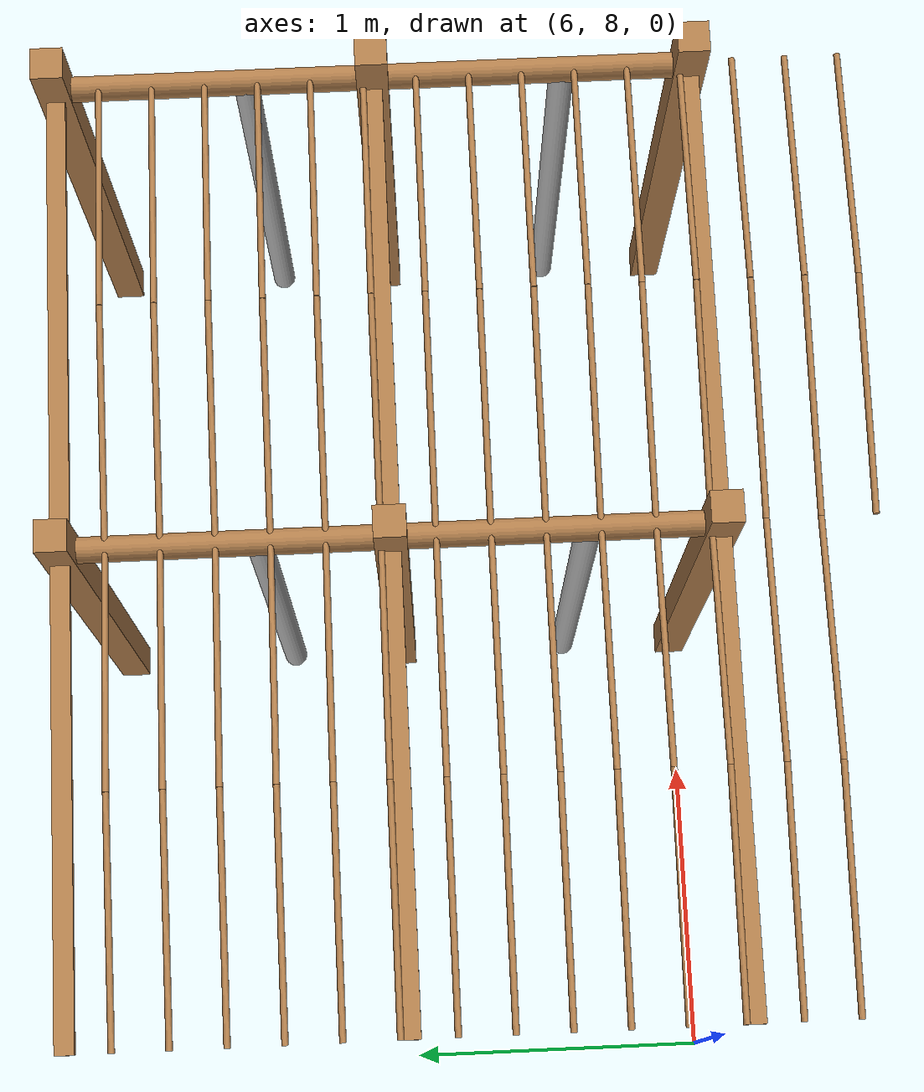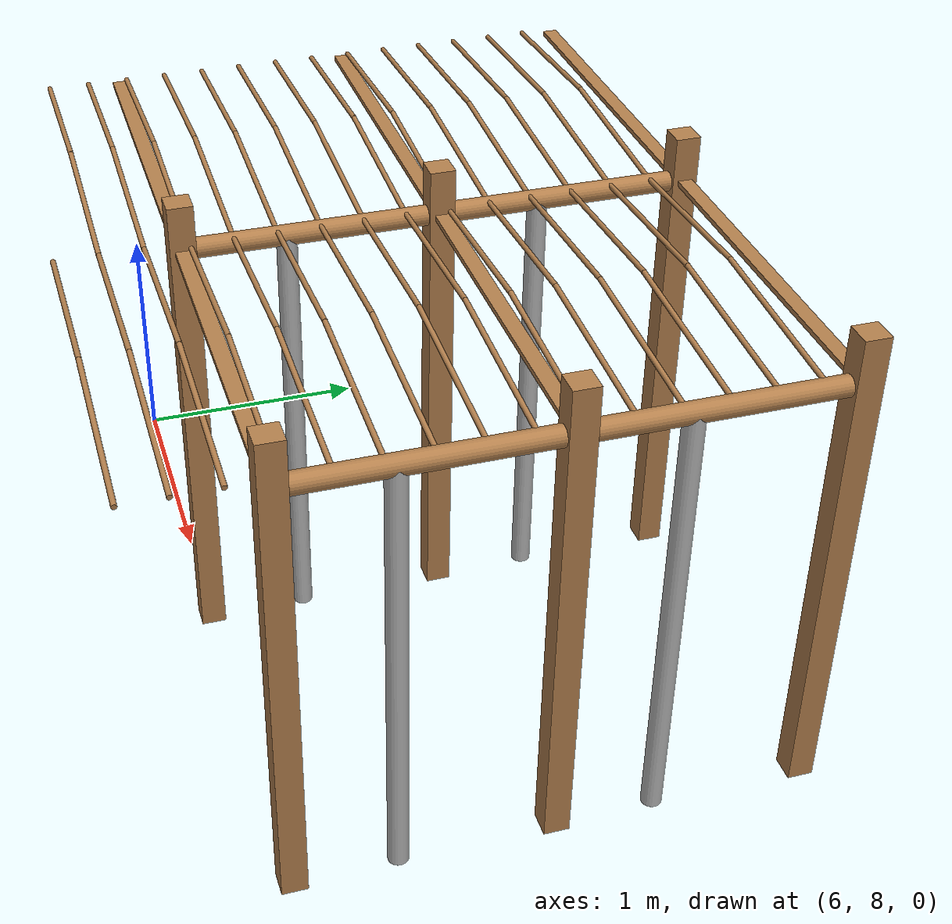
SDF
<sdf version="1.4">
 <model name="pergola">
  <include><name>post_63</name><pose>7.5 8.0 0 0 0 0</pose><uri>model://post</uri></include>
  <include><name>post_64</name><pose>7.5 9.0 0 0 0 0</pose><uri>model://post</uri></include>
  <include><name>post_65</name><pose>7.5 10.0 0 0 0 0</pose><uri>model://post</uri></include>
  <include><name>post_74</name><pose>9.0 8.0 0 0 0 0</pose><uri>model://post</uri></include>
  <include><name>post_75</name><pose>9.0 9.0 0 0 0 0</pose><uri>model://post</uri></include>
  <include><name>post_76</name><pose>9.0 10.0 0 0 0 0</pose><uri>model://post</uri></include>
  <link name="beam_52">
   <pose>6.75 8.0 1.81 0 0 0</pose>
   <collision name="collision"><geometry><box><size>1.5 0.06 0.02</size></box></geometry></collision>
   <visual name="visual">
    <geometry><box><size>1.5 0.06 0.02</size></box></geometry>
    <material><script><name>Gazebo/Wood</name></script></material>
   </visual>
   <inertial>
    <mass>5</mass>
    <inertia>
     <ixx>0.0016666666666666668</ixx>
     <ixy>0.0</ixy>
     <ixz>0.0</ixz>
     <iyy>0.9390000000000001</iyy>
     <iyz>0.0</iyz>
     <izz>0.9376666666666665</izz>
    </inertia>
   </inertial>
  </link>
  <link name="beam_53">
   <pose>6.75 9.0 1.81 0 0 0</pose>
   <collision name="collision"><geometry><box><size>1.5 0.06 0.02</size></box></geometry></collision>
   <visual name="visual">
    <geometry><box><size>1.5 0.06 0.02</size></box></geometry>
    <material><script><name>Gazebo/Wood</name></script></material>
   </visual>
   <inertial>
    <mass>5</mass>
    <inertia>
     <ixx>0.0016666666666666668</ixx>
     <ixy>0.0</ixy>
     <ixz>0.0</ixz>
     <iyy>0.9390000000000001</iyy>
     <iyz>0.0</iyz>
     <izz>0.9376666666666665</izz>
    </inertia>
   </inertial>
  </link>
  <link name="beam_54">
   <pose>6.75 10.0 1.81 0 0 0</pose>
   <collision name="collision"><geometry><box><size>1.5 0.06 0.02</size></box></geometry></collision>
   <visual name="visual">
    <geometry><box><size>1.5 0.06 0.02</size></box></geometry>
    <material><script><name>Gazebo/Wood</name></script></material>
   </visual>
   <inertial>
    <mass>5</mass>
    <inertia>
     <ixx>0.0016666666666666668</ixx>
     <ixy>0.0</ixy>
     <ixz>0.0</ixz>
     <iyy>0.9390000000000001</iyy>
     <iyz>0.0</iyz>
     <izz>0.9376666666666665</izz>
    </inertia>
   </inertial>
  </link>
  <link name="beam_63">
   <pose>8.25 8.0 1.81 0 0 0</pose>
   <collision name="collision"><geometry><box><size>1.5 0.06 0.02</size></box></geometry></collision>
   <visual name="visual">
    <geometry><box><size>1.5 0.06 0.02</size></box></geometry>
    <material><script><name>Gazebo/Wood</name></script></material>
   </visual>
   <inertial>
    <mass>5</mass>
    <inertia>
     <ixx>0.0016666666666666668</ixx>
     <ixy>0.0</ixy>
     <ixz>0.0</ixz>
     <iyy>0.9390000000000001</iyy>
     <iyz>0.0</iyz>
     <izz>0.9376666666666665</izz>
    </inertia>
   </inertial>
  </link>
  <link name="beam_64">
   <pose>8.25 9.0 1.81 0 0 0</pose>
   <collision name="collision"><geometry><box><size>1.5 0.06 0.02</size></box></geometry></collision>
   <visual name="visual">
    <geometry><box><size>1.5 0.06 0.02</size></box></geometry>
    <material><script><name>Gazebo/Wood</name></script></material>
   </visual>
   <inertial>
    <mass>5</mass>
    <inertia>
     <ixx>0.0016666666666666668</ixx>
     <ixy>0.0</ixy>
     <ixz>0.0</ixz>
     <iyy>0.9390000000000001</iyy>
     <iyz>0.0</iyz>
     <izz>0.9376666666666665</izz>
    </inertia>
   </inertial>
  </link>
  <link name="beam_65">
   <pose>8.25 10.0 1.81 0 0 0</pose>
   <collision name="collision"><geometry><box><size>1.5 0.06 0.02</size></box></geometry></collision>
   <visual name="visual">
    <geometry><box><size>1.5 0.06 0.02</size></box></geometry>
    <material><script><name>Gazebo/Wood</name></script></material>
   </visual>
   <inertial>
    <mass>5</mass>
    <inertia>
     <ixx>0.0016666666666666668</ixx>
     <ixy>0.0</ixy>
     <ixz>0.0</ixz>
     <iyy>0.9390000000000001</iyy>
     <iyz>0.0</iyz>
     <izz>0.9376666666666665</izz>
    </inertia>
   </inertial>
  </link>
  <include><name>tree_58</name><pose>7.5 8.4 0 0 0 0</pose><uri>model://tree_trunk</uri></include>
  <include><name>tree_59</name><pose>7.5 9.4 0 0 0 0</pose><uri>model://tree_trunk</uri></include>
  <include><name>tree_68</name><pose>9.0 8.4 0 0 0 0</pose><uri>model://tree_trunk</uri></include>
  <include><name>tree_69</name><pose>9.0 9.4 0 0 0 0</pose><uri>model://tree_trunk</uri></include>
  <link name="baseBranch_58">
   <pose>7.5 8.5 1.8 1.5707963267948966 0 0</pose>
   <collision name="collision">
    <geometry><cylinder><radius>0.04</radius><length>0.94</length></cylinder></geometry>
   </collision>
   <visual name="visual">
    <geometry><cylinder><radius>0.04</radius><length>0.94</length></cylinder></geometry>
    <material><script><name>Gazebo/WoodFloor</name></script></material>
   </visual>
   <inertial>
    <mass>10</mass>
    <inertia>
     <ixx>0.7403333333333334</ixx>
     <ixy>0.0</ixy>
     <ixz>0.0</ixz>
     <iyy>0.7403333333333334</iyy>
     <iyz>0.0</iyz>
     <izz>0.008</izz>
    </inertia>
   </inertial>
  </link>
  <link name="baseBranch_59">
   <pose>7.5 9.5 1.8 1.5707963267948966 0 0</pose>
   <collision name="collision">
    <geometry><cylinder><radius>0.04</radius><length>0.94</length></cylinder></geometry>
   </collision>
   <visual name="visual">
    <geometry><cylinder><radius>0.04</radius><length>0.94</length></cylinder></geometry>
    <material><script><name>Gazebo/WoodFloor</name></script></material>
   </visual>
   <inertial>
    <mass>10</mass>
    <inertia>
     <ixx>0.7403333333333334</ixx>
     <ixy>0.0</ixy>
     <ixz>0.0</ixz>
     <iyy>0.7403333333333334</iyy>
     <iyz>0.0</iyz>
     <izz>0.008</izz>
    </inertia>
   </inertial>
  </link>
  <link name="baseBranch_68">
   <pose>9.0 8.5 1.8 1.5707963267948966 0 0</pose>
   <collision name="collision">
    <geometry><cylinder><radius>0.04</radius><length>0.94</length></cylinder></geometry>
   </collision>
   <visual name="visual">
    <geometry><cylinder><radius>0.04</radius><length>0.94</length></cylinder></geometry>
    <material><script><name>Gazebo/WoodFloor</name></script></material>
   </visual>
   <inertial>
    <mass>10</mass>
    <inertia>
     <ixx>0.7403333333333334</ixx>
     <ixy>0.0</ixy>
     <ixz>0.0</ixz>
     <iyy>0.7403333333333334</iyy>
     <iyz>0.0</iyz>
     <izz>0.008</izz>
    </inertia>
   </inertial>
  </link>
  <link name="baseBranch_69">
   <pose>9.0 9.5 1.8 1.5707963267948966 0 0</pose>
   <collision name="collision">
    <geometry><cylinder><radius>0.04</radius><length>0.94</length></cylinder></geometry>
   </collision>
   <visual name="visual">
    <geometry><cylinder><radius>0.04</radius><length>0.94</length></cylinder></geometry>
    <material><script><name>Gazebo/WoodFloor</name></script></material>
   </visual>
   <inertial>
    <mass>10</mass>
    <inertia>
     <ixx>0.7403333333333334</ixx>
     <ixy>0.0</ixy>
     <ixz>0.0</ixz>
     <iyy>0.7403333333333334</iyy>
     <iyz>0.0</iyz>
     <izz>0.008</izz>
    </inertia>
   </inertial>
  </link>
  <link name="vine_572">
   <pose>6.375 7.696666666666666 1.85 0 1.5042281630190728 0</pose>
   <collision name="collision">
    <geometry><cylinder><radius>0.01</radius><length>0.7516648189186453</length></cylinder></geometry>
   </collision>
   <visual name="visual">
    <geometry><cylinder><radius>0.01</radius><length>0.7516648189186453</length></cylinder></geometry>
    <material><script><name>Gazebo/WoodFloor</name></script></material>
   </visual>
   <inertial>
    <mass>5</mass>
    <inertia>
     <ixx>0.23554166666666657</ixx>
     <ixy>0.0</ixy>
     <ixz>0.0</ixz>
     <iyy>0.23554166666666657</iyy>
     <iyz>0.0</iyz>
     <izz>0.00025</izz>
    </inertia>
   </inertial>
  </link>
  <link name="vine_573">
   <pose>7.125 7.696666666666666 1.85 0 -1.5042281630190728 0</pose>
   <collision name="collision">
    <geometry><cylinder><radius>0.01</radius><length>0.7516648189186453</length></cylinder></geometry>
   </collision>
   <visual name="visual">
    <geometry><cylinder><radius>0.01</radius><length>0.7516648189186453</length></cylinder></geometry>
    <material><script><name>Gazebo/WoodFloor</name></script></material>
   </visual>
   <inertial>
    <mass>5</mass>
    <inertia>
     <ixx>0.23554166666666657</ixx>
     <ixy>0.0</ixy>
     <ixz>0.0</ixz>
     <iyy>0.23554166666666657</iyy>
     <iyz>0.0</iyz>
     <izz>0.00025</izz>
    </inertia>
   </inertial>
  </link>
  <link name="vine_574">
   <pose>6.375 7.863333333333333 1.85 0 1.5042281630190728 0</pose>
   <collision name="collision">
    <geometry><cylinder><radius>0.01</radius><length>0.7516648189186453</length></cylinder></geometry>
   </collision>
   <visual name="visual">
    <geometry><cylinder><radius>0.01</radius><length>0.7516648189186453</length></cylinder></geometry>
    <material><script><name>Gazebo/WoodFloor</name></script></material>
   </visual>
   <inertial>
    <mass>5</mass>
    <inertia>
     <ixx>0.23554166666666657</ixx>
     <ixy>0.0</ixy>
     <ixz>0.0</ixz>
     <iyy>0.23554166666666657</iyy>
     <iyz>0.0</iyz>
     <izz>0.00025</izz>
    </inertia>
   </inertial>
  </link>
  <link name="vine_575">
   <pose>7.125 7.863333333333333 1.85 0 -1.5042281630190728 0</pose>
   <collision name="collision">
    <geometry><cylinder><radius>0.01</radius><length>0.7516648189186453</length></cylinder></geometry>
   </collision>
   <visual name="visual">
    <geometry><cylinder><radius>0.01</radius><length>0.7516648189186453</length></cylinder></geometry>
    <material><script><name>Gazebo/WoodFloor</name></script></material>
   </visual>
   <inertial>
    <mass>5</mass>
    <inertia>
     <ixx>0.23554166666666657</ixx>
     <ixy>0.0</ixy>
     <ixz>0.0</ixz>
     <iyy>0.23554166666666657</iyy>
     <iyz>0.0</iyz>
     <izz>0.00025</izz>
    </inertia>
   </inertial>
  </link>
  <link name="vine_576">
   <pose>6.375 8.03 1.85 0 1.5042281630190728 0</pose>
   <collision name="collision">
    <geometry><cylinder><radius>0.01</radius><length>0.7516648189186453</length></cylinder></geometry>
   </collision>
   <visual name="visual">
    <geometry><cylinder><radius>0.01</radius><length>0.7516648189186453</length></cylinder></geometry>
    <material><script><name>Gazebo/WoodFloor</name></script></material>
   </visual>
   <inertial>
    <mass>5</mass>
    <inertia>
     <ixx>0.23554166666666657</ixx>
     <ixy>0.0</ixy>
     <ixz>0.0</ixz>
     <iyy>0.23554166666666657</iyy>
     <iyz>0.0</iyz>
     <izz>0.00025</izz>
    </inertia>
   </inertial>
  </link>
  <link name="vine_577">
   <pose>7.125 8.03 1.85 0 -1.5042281630190728 0</pose>
   <collision name="collision">
    <geometry><cylinder><radius>0.01</radius><length>0.7516648189186453</length></cylinder></geometry>
   </collision>
   <visual name="visual">
    <geometry><cylinder><radius>0.01</radius><length>0.7516648189186453</length></cylinder></geometry>
    <material><script><name>Gazebo/WoodFloor</name></script></material>
   </visual>
   <inertial>
    <mass>5</mass>
    <inertia>
     <ixx>0.23554166666666657</ixx>
     <ixy>0.0</ixy>
     <ixz>0.0</ixz>
     <iyy>0.23554166666666657</iyy>
     <iyz>0.0</iyz>
     <izz>0.00025</izz>
    </inertia>
   </inertial>
  </link>
  <link name="vine_578">
   <pose>6.375 8.196666666666665 1.85 0 1.5042281630190728 0</pose>
   <collision name="collision">
    <geometry><cylinder><radius>0.01</radius><length>0.7516648189186453</length></cylinder></geometry>
   </collision>
   <visual name="visual">
    <geometry><cylinder><radius>0.01</radius><length>0.7516648189186453</length></cylinder></geometry>
    <material><script><name>Gazebo/WoodFloor</name></script></material>
   </visual>
   <inertial>
    <mass>5</mass>
    <inertia>
     <ixx>0.23554166666666657</ixx>
     <ixy>0.0</ixy>
     <ixz>0.0</ixz>
     <iyy>0.23554166666666657</iyy>
     <iyz>0.0</iyz>
     <izz>0.00025</izz>
    </inertia>
   </inertial>
  </link>
  <link name="vine_579">
   <pose>7.125 8.196666666666665 1.85 0 -1.5042281630190728 0</pose>
   <collision name="collision">
    <geometry><cylinder><radius>0.01</radius><length>0.7516648189186453</length></cylinder></geometry>
   </collision>
   <visual name="visual">
    <geometry><cylinder><radius>0.01</radius><length>0.7516648189186453</length></cylinder></geometry>
    <material><script><name>Gazebo/WoodFloor</name></script></material>
   </visual>
   <inertial>
    <mass>5</mass>
    <inertia>
     <ixx>0.23554166666666657</ixx>
     <ixy>0.0</ixy>
     <ixz>0.0</ixz>
     <iyy>0.23554166666666657</iyy>
     <iyz>0.0</iyz>
     <izz>0.00025</izz>
    </inertia>
   </inertial>
  </link>
  <link name="vine_580">
   <pose>6.375 8.363333333333332 1.85 0 1.5042281630190728 0</pose>
   <collision name="collision">
    <geometry><cylinder><radius>0.01</radius><length>0.7516648189186453</length></cylinder></geometry>
   </collision>
   <visual name="visual">
    <geometry><cylinder><radius>0.01</radius><length>0.7516648189186453</length></cylinder></geometry>
    <material><script><name>Gazebo/WoodFloor</name></script></material>
   </visual>
   <inertial>
    <mass>5</mass>
    <inertia>
     <ixx>0.23554166666666657</ixx>
     <ixy>0.0</ixy>
     <ixz>0.0</ixz>
     <iyy>0.23554166666666657</iyy>
     <iyz>0.0</iyz>
     <izz>0.00025</izz>
    </inertia>
   </inertial>
  </link>
  <link name="vine_581">
   <pose>7.125 8.363333333333332 1.85 0 -1.5042281630190728 0</pose>
   <collision name="collision">
    <geometry><cylinder><radius>0.01</radius><length>0.7516648189186453</length></cylinder></geometry>
   </collision>
   <visual name="visual">
    <geometry><cylinder><radius>0.01</radius><length>0.7516648189186453</length></cylinder></geometry>
    <material><script><name>Gazebo/WoodFloor</name></script></material>
   </visual>
   <inertial>
    <mass>5</mass>
    <inertia>
     <ixx>0.23554166666666657</ixx>
     <ixy>0.0</ixy>
     <ixz>0.0</ixz>
     <iyy>0.23554166666666657</iyy>
     <iyz>0.0</iyz>
     <izz>0.00025</izz>
    </inertia>
   </inertial>
  </link>
  <link name="vine_582">
   <pose>6.375 8.53 1.85 0 1.5042281630190728 0</pose>
   <collision name="collision">
    <geometry><cylinder><radius>0.01</radius><length>0.7516648189186453</length></cylinder></geometry>
   </collision>
   <visual name="visual">
    <geometry><cylinder><radius>0.01</radius><length>0.7516648189186453</length></cylinder></geometry>
    <material><script><name>Gazebo/WoodFloor</name></script></material>
   </visual>
   <inertial>
    <mass>5</mass>
    <inertia>
     <ixx>0.23554166666666657</ixx>
     <ixy>0.0</ixy>
     <ixz>0.0</ixz>
     <iyy>0.23554166666666657</iyy>
     <iyz>0.0</iyz>
     <izz>0.00025</izz>
    </inertia>
   </inertial>
  </link>
  <link name="vine_583">
   <pose>7.125 8.53 1.85 0 -1.5042281630190728 0</pose>
   <collision name="collision">
    <geometry><cylinder><radius>0.01</radius><length>0.7516648189186453</length></cylinder></geometry>
   </collision>
   <visual name="visual">
    <geometry><cylinder><radius>0.01</radius><length>0.7516648189186453</length></cylinder></geometry>
    <material><script><name>Gazebo/WoodFloor</name></script></material>
   </visual>
   <inertial>
    <mass>5</mass>
    <inertia>
     <ixx>0.23554166666666657</ixx>
     <ixy>0.0</ixy>
     <ixz>0.0</ixz>
     <iyy>0.23554166666666657</iyy>
     <iyz>0.0</iyz>
     <izz>0.00025</izz>
    </inertia>
   </inertial>
  </link>
  <link name="vine_584">
   <pose>6.375 8.696666666666665 1.85 0 1.5042281630190728 0</pose>
   <collision name="collision">
    <geometry><cylinder><radius>0.01</radius><length>0.7516648189186453</length></cylinder></geometry>
   </collision>
   <visual name="visual">
    <geometry><cylinder><radius>0.01</radius><length>0.7516648189186453</length></cylinder></geometry>
    <material><script><name>Gazebo/WoodFloor</name></script></material>
   </visual>
   <inertial>
    <mass>5</mass>
    <inertia>
     <ixx>0.23554166666666657</ixx>
     <ixy>0.0</ixy>
     <ixz>0.0</ixz>
     <iyy>0.23554166666666657</iyy>
     <iyz>0.0</iyz>
     <izz>0.00025</izz>
    </inertia>
   </inertial>
  </link>
  <link name="vine_585">
   <pose>7.125 8.696666666666665 1.85 0 -1.5042281630190728 0</pose>
   <collision name="collision">
    <geometry><cylinder><radius>0.01</radius><length>0.7516648189186453</length></cylinder></geometry>
   </collision>
   <visual name="visual">
    <geometry><cylinder><radius>0.01</radius><length>0.7516648189186453</length></cylinder></geometry>
    <material><script><name>Gazebo/WoodFloor</name></script></material>
   </visual>
   <inertial>
    <mass>5</mass>
    <inertia>
     <ixx>0.23554166666666657</ixx>
     <ixy>0.0</ixy>
     <ixz>0.0</ixz>
     <iyy>0.23554166666666657</iyy>
     <iyz>0.0</iyz>
     <izz>0.00025</izz>
    </inertia>
   </inertial>
  </link>
  <link name="vine_586">
   <pose>6.375 8.863333333333332 1.85 0 1.5042281630190728 0</pose>
   <collision name="collision">
    <geometry><cylinder><radius>0.01</radius><length>0.7516648189186453</length></cylinder></geometry>
   </collision>
   <visual name="visual">
    <geometry><cylinder><radius>0.01</radius><length>0.7516648189186453</length></cylinder></geometry>
    <material><script><name>Gazebo/WoodFloor</name></script></material>
   </visual>
   <inertial>
    <mass>5</mass>
    <inertia>
     <ixx>0.23554166666666657</ixx>
     <ixy>0.0</ixy>
     <ixz>0.0</ixz>
     <iyy>0.23554166666666657</iyy>
     <iyz>0.0</iyz>
     <izz>0.00025</izz>
    </inertia>
   </inertial>
  </link>
  <link name="vine_587">
   <pose>7.125 8.863333333333332 1.85 0 -1.5042281630190728 0</pose>
   <collision name="collision">
    <geometry><cylinder><radius>0.01</radius><length>0.7516648189186453</length></cylinder></geometry>
   </collision>
   <visual name="visual">
    <geometry><cylinder><radius>0.01</radius><length>0.7516648189186453</length></cylinder></geometry>
    <material><script><name>Gazebo/WoodFloor</name></script></material>
   </visual>
   <inertial>
    <mass>5</mass>
    <inertia>
     <ixx>0.23554166666666657</ixx>
     <ixy>0.0</ixy>
     <ixz>0.0</ixz>
     <iyy>0.23554166666666657</iyy>
     <iyz>0.0</iyz>
     <izz>0.00025</izz>
    </inertia>
   </inertial>
  </link>
  <link name="vine_588">
   <pose>6.375 9.03 1.85 0 1.5042281630190728 0</pose>
   <collision name="collision">
    <geometry><cylinder><radius>0.01</radius><length>0.7516648189186453</length></cylinder></geometry>
   </collision>
   <visual name="visual">
    <geometry><cylinder><radius>0.01</radius><length>0.7516648189186453</length></cylinder></geometry>
    <material><script><name>Gazebo/WoodFloor</name></script></material>
   </visual>
   <inertial>
    <mass>5</mass>
    <inertia>
     <ixx>0.23554166666666657</ixx>
     <ixy>0.0</ixy>
     <ixz>0.0</ixz>
     <iyy>0.23554166666666657</iyy>
     <iyz>0.0</iyz>
     <izz>0.00025</izz>
    </inertia>
   </inertial>
  </link>
  <link name="vine_589">
   <pose>7.125 9.03 1.85 0 -1.5042281630190728 0</pose>
   <collision name="collision">
    <geometry><cylinder><radius>0.01</radius><length>0.7516648189186453</length></cylinder></geometry>
   </collision>
   <visual name="visual">
    <geometry><cylinder><radius>0.01</radius><length>0.7516648189186453</length></cylinder></geometry>
    <material><script><name>Gazebo/WoodFloor</name></script></material>
   </visual>
   <inertial>
    <mass>5</mass>
    <inertia>
     <ixx>0.23554166666666657</ixx>
     <ixy>0.0</ixy>
     <ixz>0.0</ixz>
     <iyy>0.23554166666666657</iyy>
     <iyz>0.0</iyz>
     <izz>0.00025</izz>
    </inertia>
   </inertial>
  </link>
  <link name="vine_590">
   <pose>6.375 9.196666666666665 1.85 0 1.5042281630190728 0</pose>
   <collision name="collision">
    <geometry><cylinder><radius>0.01</radius><length>0.7516648189186453</length></cylinder></geometry>
   </collision>
   <visual name="visual">
    <geometry><cylinder><radius>0.01</radius><length>0.7516648189186453</length></cylinder></geometry>
    <material><script><name>Gazebo/WoodFloor</name></script></material>
   </visual>
   <inertial>
    <mass>5</mass>
    <inertia>
     <ixx>0.23554166666666657</ixx>
     <ixy>0.0</ixy>
     <ixz>0.0</ixz>
     <iyy>0.23554166666666657</iyy>
     <iyz>0.0</iyz>
     <izz>0.00025</izz>
    </inertia>
   </inertial>
  </link>
  <link name="vine_591">
   <pose>7.125 9.196666666666665 1.85 0 -1.5042281630190728 0</pose>
   <collision name="collision">
    <geometry><cylinder><radius>0.01</radius><length>0.7516648189186453</length></cylinder></geometry>
   </collision>
   <visual name="visual">
    <geometry><cylinder><radius>0.01</radius><length>0.7516648189186453</length></cylinder></geometry>
    <material><script><name>Gazebo/WoodFloor</name></script></material>
   </visual>
   <inertial>
    <mass>5</mass>
    <inertia>
     <ixx>0.23554166666666657</ixx>
     <ixy>0.0</ixy>
     <ixz>0.0</ixz>
     <iyy>0.23554166666666657</iyy>
     <iyz>0.0</iyz>
     <izz>0.00025</izz>
    </inertia>
   </inertial>
  </link>
  <link name="vine_592">
   <pose>6.375 9.363333333333332 1.85 0 1.5042281630190728 0</pose>
   <collision name="collision">
    <geometry><cylinder><radius>0.01</radius><length>0.7516648189186453</length></cylinder></geometry>
   </collision>
   <visual name="visual">
    <geometry><cylinder><radius>0.01</radius><length>0.7516648189186453</length></cylinder></geometry>
    <material><script><name>Gazebo/WoodFloor</name></script></material>
   </visual>
   <inertial>
    <mass>5</mass>
    <inertia>
     <ixx>0.23554166666666657</ixx>
     <ixy>0.0</ixy>
     <ixz>0.0</ixz>
     <iyy>0.23554166666666657</iyy>
     <iyz>0.0</iyz>
     <izz>0.00025</izz>
    </inertia>
   </inertial>
  </link>
  <link name="vine_593">
   <pose>7.125 9.363333333333332 1.85 0 -1.5042281630190728 0</pose>
   <collision name="collision">
    <geometry><cylinder><radius>0.01</radius><length>0.7516648189186453</length></cylinder></geometry>
   </collision>
   <visual name="visual">
    <geometry><cylinder><radius>0.01</radius><length>0.7516648189186453</length></cylinder></geometry>
    <material><script><name>Gazebo/WoodFloor</name></script></material>
   </visual>
   <inertial>
    <mass>5</mass>
    <inertia>
     <ixx>0.23554166666666657</ixx>
     <ixy>0.0</ixy>
     <ixz>0.0</ixz>
     <iyy>0.23554166666666657</iyy>
     <iyz>0.0</iyz>
     <izz>0.00025</izz>
    </inertia>
   </inertial>
  </link>
  <link name="vine_594">
   <pose>6.375 9.53 1.85 0 1.5042281630190728 0</pose>
   <collision name="collision">
    <geometry><cylinder><radius>0.01</radius><length>0.7516648189186453</length></cylinder></geometry>
   </collision>
   <visual name="visual">
    <geometry><cylinder><radius>0.01</radius><length>0.7516648189186453</length></cylinder></geometry>
    <material><script><name>Gazebo/WoodFloor</name></script></material>
   </visual>
   <inertial>
    <mass>5</mass>
    <inertia>
     <ixx>0.23554166666666657</ixx>
     <ixy>0.0</ixy>
     <ixz>0.0</ixz>
     <iyy>0.23554166666666657</iyy>
     <iyz>0.0</iyz>
     <izz>0.00025</izz>
    </inertia>
   </inertial>
  </link>
  <link name="vine_595">
   <pose>7.125 9.53 1.85 0 -1.5042281630190728 0</pose>
   <collision name="collision">
    <geometry><cylinder><radius>0.01</radius><length>0.7516648189186453</length></cylinder></geometry>
   </collision>
   <visual name="visual">
    <geometry><cylinder><radius>0.01</radius><length>0.7516648189186453</length></cylinder></geometry>
    <material><script><name>Gazebo/WoodFloor</name></script></material>
   </visual>
   <inertial>
    <mass>5</mass>
    <inertia>
     <ixx>0.23554166666666657</ixx>
     <ixy>0.0</ixy>
     <ixz>0.0</ixz>
     <iyy>0.23554166666666657</iyy>
     <iyz>0.0</iyz>
     <izz>0.00025</izz>
    </inertia>
   </inertial>
  </link>
  <link name="vine_596">
   <pose>6.375 9.696666666666665 1.85 0 1.5042281630190728 0</pose>
   <collision name="collision">
    <geometry><cylinder><radius>0.01</radius><length>0.7516648189186453</length></cylinder></geometry>
   </collision>
   <visual name="visual">
    <geometry><cylinder><radius>0.01</radius><length>0.7516648189186453</length></cylinder></geometry>
    <material><script><name>Gazebo/WoodFloor</name></script></material>
   </visual>
   <inertial>
    <mass>5</mass>
    <inertia>
     <ixx>0.23554166666666657</ixx>
     <ixy>0.0</ixy>
     <ixz>0.0</ixz>
     <iyy>0.23554166666666657</iyy>
     <iyz>0.0</iyz>
     <izz>0.00025</izz>
    </inertia>
   </inertial>
  </link>
  <link name="vine_597">
   <pose>7.125 9.696666666666665 1.85 0 -1.5042281630190728 0</pose>
   <collision name="collision">
    <geometry><cylinder><radius>0.01</radius><length>0.7516648189186453</length></cylinder></geometry>
   </collision>
   <visual name="visual">
    <geometry><cylinder><radius>0.01</radius><length>0.7516648189186453</length></cylinder></geometry>
    <material><script><name>Gazebo/WoodFloor</name></script></material>
   </visual>
   <inertial>
    <mass>5</mass>
    <inertia>
     <ixx>0.23554166666666657</ixx>
     <ixy>0.0</ixy>
     <ixz>0.0</ixz>
     <iyy>0.23554166666666657</iyy>
     <iyz>0.0</iyz>
     <izz>0.00025</izz>
    </inertia>
   </inertial>
  </link>
  <link name="vine_598">
   <pose>6.375 9.863333333333332 1.85 0 1.5042281630190728 0</pose>
   <collision name="collision">
    <geometry><cylinder><radius>0.01</radius><length>0.7516648189186453</length></cylinder></geometry>
   </collision>
   <visual name="visual">
    <geometry><cylinder><radius>0.01</radius><length>0.7516648189186453</length></cylinder></geometry>
    <material><script><name>Gazebo/WoodFloor</name></script></material>
   </visual>
   <inertial>
    <mass>5</mass>
    <inertia>
     <ixx>0.23554166666666657</ixx>
     <ixy>0.0</ixy>
     <ixz>0.0</ixz>
     <iyy>0.23554166666666657</iyy>
     <iyz>0.0</iyz>
     <izz>0.00025</izz>
    </inertia>
   </inertial>
  </link>
  <link name="vine_599">
   <pose>7.125 9.863333333333332 1.85 0 -1.5042281630190728 0</pose>
   <collision name="collision">
    <geometry><cylinder><radius>0.01</radius><length>0.7516648189186453</length></cylinder></geometry>
   </collision>
   <visual name="visual">
    <geometry><cylinder><radius>0.01</radius><length>0.7516648189186453</length></cylinder></geometry>
    <material><script><name>Gazebo/WoodFloor</name></script></material>
   </visual>
   <inertial>
    <mass>5</mass>
    <inertia>
     <ixx>0.23554166666666657</ixx>
     <ixy>0.0</ixy>
     <ixz>0.0</ixz>
     <iyy>0.23554166666666657</iyy>
     <iyz>0.0</iyz>
     <izz>0.00025</izz>
    </inertia>
   </inertial>
  </link>
  <link name="vine_690">
   <pose>7.875 7.53 1.85 0 1.5042281630190728 0</pose>
   <collision name="collision">
    <geometry><cylinder><radius>0.01</radius><length>0.7516648189186453</length></cylinder></geometry>
   </collision>
   <visual name="visual">
    <geometry><cylinder><radius>0.01</radius><length>0.7516648189186453</length></cylinder></geometry>
    <material><script><name>Gazebo/WoodFloor</name></script></material>
   </visual>
   <inertial>
    <mass>5</mass>
    <inertia>
     <ixx>0.23554166666666657</ixx>
     <ixy>0.0</ixy>
     <ixz>0.0</ixz>
     <iyy>0.23554166666666657</iyy>
     <iyz>0.0</iyz>
     <izz>0.00025</izz>
    </inertia>
   </inertial>
  </link>
  <link name="vine_691">
   <pose>8.625 7.53 1.85 0 -1.5042281630190728 0</pose>
   <collision name="collision">
    <geometry><cylinder><radius>0.01</radius><length>0.7516648189186453</length></cylinder></geometry>
   </collision>
   <visual name="visual">
    <geometry><cylinder><radius>0.01</radius><length>0.7516648189186453</length></cylinder></geometry>
    <material><script><name>Gazebo/WoodFloor</name></script></material>
   </visual>
   <inertial>
    <mass>5</mass>
    <inertia>
     <ixx>0.23554166666666657</ixx>
     <ixy>0.0</ixy>
     <ixz>0.0</ixz>
     <iyy>0.23554166666666657</iyy>
     <iyz>0.0</iyz>
     <izz>0.00025</izz>
    </inertia>
   </inertial>
  </link>
  <link name="vine_692">
   <pose>7.875 7.696666666666666 1.85 0 1.5042281630190728 0</pose>
   <collision name="collision">
    <geometry><cylinder><radius>0.01</radius><length>0.7516648189186453</length></cylinder></geometry>
   </collision>
   <visual name="visual">
    <geometry><cylinder><radius>0.01</radius><length>0.7516648189186453</length></cylinder></geometry>
    <material><script><name>Gazebo/WoodFloor</name></script></material>
   </visual>
   <inertial>
    <mass>5</mass>
    <inertia>
     <ixx>0.23554166666666657</ixx>
     <ixy>0.0</ixy>
     <ixz>0.0</ixz>
     <iyy>0.23554166666666657</iyy>
     <iyz>0.0</iyz>
     <izz>0.00025</izz>
    </inertia>
   </inertial>
  </link>
  <link name="vine_693">
   <pose>8.625 7.696666666666666 1.85 0 -1.5042281630190728 0</pose>
   <collision name="collision">
    <geometry><cylinder><radius>0.01</radius><length>0.7516648189186453</length></cylinder></geometry>
   </collision>
   <visual name="visual">
    <geometry><cylinder><radius>0.01</radius><length>0.7516648189186453</length></cylinder></geometry>
    <material><script><name>Gazebo/WoodFloor</name></script></material>
   </visual>
   <inertial>
    <mass>5</mass>
    <inertia>
     <ixx>0.23554166666666657</ixx>
     <ixy>0.0</ixy>
     <ixz>0.0</ixz>
     <iyy>0.23554166666666657</iyy>
     <iyz>0.0</iyz>
     <izz>0.00025</izz>
    </inertia>
   </inertial>
  </link>
  <link name="vine_694">
   <pose>7.875 7.863333333333333 1.85 0 1.5042281630190728 0</pose>
   <collision name="collision">
    <geometry><cylinder><radius>0.01</radius><length>0.7516648189186453</length></cylinder></geometry>
   </collision>
   <visual name="visual">
    <geometry><cylinder><radius>0.01</radius><length>0.7516648189186453</length></cylinder></geometry>
    <material><script><name>Gazebo/WoodFloor</name></script></material>
   </visual>
   <inertial>
    <mass>5</mass>
    <inertia>
     <ixx>0.23554166666666657</ixx>
     <ixy>0.0</ixy>
     <ixz>0.0</ixz>
     <iyy>0.23554166666666657</iyy>
     <iyz>0.0</iyz>
     <izz>0.00025</izz>
    </inertia>
   </inertial>
  </link>
  <link name="vine_695">
   <pose>8.625 7.863333333333333 1.85 0 -1.5042281630190728 0</pose>
   <collision name="collision">
    <geometry><cylinder><radius>0.01</radius><length>0.7516648189186453</length></cylinder></geometry>
   </collision>
   <visual name="visual">
    <geometry><cylinder><radius>0.01</radius><length>0.7516648189186453</length></cylinder></geometry>
    <material><script><name>Gazebo/WoodFloor</name></script></material>
   </visual>
   <inertial>
    <mass>5</mass>
    <inertia>
     <ixx>0.23554166666666657</ixx>
     <ixy>0.0</ixy>
     <ixz>0.0</ixz>
     <iyy>0.23554166666666657</iyy>
     <iyz>0.0</iyz>
     <izz>0.00025</izz>
    </inertia>
   </inertial>
  </link>
  <link name="vine_696">
   <pose>7.875 8.03 1.85 0 1.5042281630190728 0</pose>
   <collision name="collision">
    <geometry><cylinder><radius>0.01</radius><length>0.7516648189186453</length></cylinder></geometry>
   </collision>
   <visual name="visual">
    <geometry><cylinder><radius>0.01</radius><length>0.7516648189186453</length></cylinder></geometry>
    <material><script><name>Gazebo/WoodFloor</name></script></material>
   </visual>
   <inertial>
    <mass>5</mass>
    <inertia>
     <ixx>0.23554166666666657</ixx>
     <ixy>0.0</ixy>
     <ixz>0.0</ixz>
     <iyy>0.23554166666666657</iyy>
     <iyz>0.0</iyz>
     <izz>0.00025</izz>
    </inertia>
   </inertial>
  </link>
  <link name="vine_697">
   <pose>8.625 8.03 1.85 0 -1.5042281630190728 0</pose>
   <collision name="collision">
    <geometry><cylinder><radius>0.01</radius><length>0.7516648189186453</length></cylinder></geometry>
   </collision>
   <visual name="visual">
    <geometry><cylinder><radius>0.01</radius><length>0.7516648189186453</length></cylinder></geometry>
    <material><script><name>Gazebo/WoodFloor</name></script></material>
   </visual>
   <inertial>
    <mass>5</mass>
    <inertia>
     <ixx>0.23554166666666657</ixx>
     <ixy>0.0</ixy>
     <ixz>0.0</ixz>
     <iyy>0.23554166666666657</iyy>
     <iyz>0.0</iyz>
     <izz>0.00025</izz>
    </inertia>
   </inertial>
  </link>
  <link name="vine_698">
   <pose>7.875 8.196666666666665 1.85 0 1.5042281630190728 0</pose>
   <collision name="collision">
    <geometry><cylinder><radius>0.01</radius><length>0.7516648189186453</length></cylinder></geometry>
   </collision>
   <visual name="visual">
    <geometry><cylinder><radius>0.01</radius><length>0.7516648189186453</length></cylinder></geometry>
    <material><script><name>Gazebo/WoodFloor</name></script></material>
   </visual>
   <inertial>
    <mass>5</mass>
    <inertia>
     <ixx>0.23554166666666657</ixx>
     <ixy>0.0</ixy>
     <ixz>0.0</ixz>
     <iyy>0.23554166666666657</iyy>
     <iyz>0.0</iyz>
     <izz>0.00025</izz>
    </inertia>
   </inertial>
  </link>
  <link name="vine_699">
   <pose>8.625 8.196666666666665 1.85 0 -1.5042281630190728 0</pose>
   <collision name="collision">
    <geometry><cylinder><radius>0.01</radius><length>0.7516648189186453</length></cylinder></geometry>
   </collision>
   <visual name="visual">
    <geometry><cylinder><radius>0.01</radius><length>0.7516648189186453</length></cylinder></geometry>
    <material><script><name>Gazebo/WoodFloor</name></script></material>
   </visual>
   <inertial>
    <mass>5</mass>
    <inertia>
     <ixx>0.23554166666666657</ixx>
     <ixy>0.0</ixy>
     <ixz>0.0</ixz>
     <iyy>0.23554166666666657</iyy>
     <iyz>0.0</iyz>
     <izz>0.00025</izz>
    </inertia>
   </inertial>
  </link>
  <link name="vine_700">
   <pose>7.875 8.363333333333332 1.85 0 1.5042281630190728 0</pose>
   <collision name="collision">
    <geometry><cylinder><radius>0.01</radius><length>0.7516648189186453</length></cylinder></geometry>
   </collision>
   <visual name="visual">
    <geometry><cylinder><radius>0.01</radius><length>0.7516648189186453</length></cylinder></geometry>
    <material><script><name>Gazebo/WoodFloor</name></script></material>
   </visual>
   <inertial>
    <mass>5</mass>
    <inertia>
     <ixx>0.23554166666666657</ixx>
     <ixy>0.0</ixy>
     <ixz>0.0</ixz>
     <iyy>0.23554166666666657</iyy>
     <iyz>0.0</iyz>
     <izz>0.00025</izz>
    </inertia>
   </inertial>
  </link>
  <link name="vine_701">
   <pose>8.625 8.363333333333332 1.85 0 -1.5042281630190728 0</pose>
   <collision name="collision">
    <geometry><cylinder><radius>0.01</radius><length>0.7516648189186453</length></cylinder></geometry>
   </collision>
   <visual name="visual">
    <geometry><cylinder><radius>0.01</radius><length>0.7516648189186453</length></cylinder></geometry>
    <material><script><name>Gazebo/WoodFloor</name></script></material>
   </visual>
   <inertial>
    <mass>5</mass>
    <inertia>
     <ixx>0.23554166666666657</ixx>
     <ixy>0.0</ixy>
     <ixz>0.0</ixz>
     <iyy>0.23554166666666657</iyy>
     <iyz>0.0</iyz>
     <izz>0.00025</izz>
    </inertia>
   </inertial>
  </link>
  <link name="vine_702">
   <pose>7.875 8.53 1.85 0 1.5042281630190728 0</pose>
   <collision name="collision">
    <geometry><cylinder><radius>0.01</radius><length>0.7516648189186453</length></cylinder></geometry>
   </collision>
   <visual name="visual">
    <geometry><cylinder><radius>0.01</radius><length>0.7516648189186453</length></cylinder></geometry>
    <material><script><name>Gazebo/WoodFloor</name></script></material>
   </visual>
   <inertial>
    <mass>5</mass>
    <inertia>
     <ixx>0.23554166666666657</ixx>
     <ixy>0.0</ixy>
     <ixz>0.0</ixz>
     <iyy>0.23554166666666657</iyy>
     <iyz>0.0</iyz>
     <izz>0.00025</izz>
    </inertia>
   </inertial>
  </link>
  <link name="vine_703">
   <pose>8.625 8.53 1.85 0 -1.5042281630190728 0</pose>
   <collision name="collision">
    <geometry><cylinder><radius>0.01</radius><length>0.7516648189186453</length></cylinder></geometry>
   </collision>
   <visual name="visual">
    <geometry><cylinder><radius>0.01</radius><length>0.7516648189186453</length></cylinder></geometry>
    <material><script><name>Gazebo/WoodFloor</name></script></material>
   </visual>
   <inertial>
    <mass>5</mass>
    <inertia>
     <ixx>0.23554166666666657</ixx>
     <ixy>0.0</ixy>
     <ixz>0.0</ixz>
     <iyy>0.23554166666666657</iyy>
     <iyz>0.0</iyz>
     <izz>0.00025</izz>
    </inertia>
   </inertial>
  </link>
  <link name="vine_704">
   <pose>7.875 8.696666666666665 1.85 0 1.5042281630190728 0</pose>
   <collision name="collision">
    <geometry><cylinder><radius>0.01</radius><length>0.7516648189186453</length></cylinder></geometry>
   </collision>
   <visual name="visual">
    <geometry><cylinder><radius>0.01</radius><length>0.7516648189186453</length></cylinder></geometry>
    <material><script><name>Gazebo/WoodFloor</name></script></material>
   </visual>
   <inertial>
    <mass>5</mass>
    <inertia>
     <ixx>0.23554166666666657</ixx>
     <ixy>0.0</ixy>
     <ixz>0.0</ixz>
     <iyy>0.23554166666666657</iyy>
     <iyz>0.0</iyz>
     <izz>0.00025</izz>
    </inertia>
   </inertial>
  </link>
  <link name="vine_705">
   <pose>8.625 8.696666666666665 1.85 0 -1.5042281630190728 0</pose>
   <collision name="collision">
    <geometry><cylinder><radius>0.01</radius><length>0.7516648189186453</length></cylinder></geometry>
   </collision>
   <visual name="visual">
    <geometry><cylinder><radius>0.01</radius><length>0.7516648189186453</length></cylinder></geometry>
    <material><script><name>Gazebo/WoodFloor</name></script></material>
   </visual>
   <inertial>
    <mass>5</mass>
    <inertia>
     <ixx>0.23554166666666657</ixx>
     <ixy>0.0</ixy>
     <ixz>0.0</ixz>
     <iyy>0.23554166666666657</iyy>
     <iyz>0.0</iyz>
     <izz>0.00025</izz>
    </inertia>
   </inertial>
  </link>
  <link name="vine_706">
   <pose>7.875 8.863333333333332 1.85 0 1.5042281630190728 0</pose>
   <collision name="collision">
    <geometry><cylinder><radius>0.01</radius><length>0.7516648189186453</length></cylinder></geometry>
   </collision>
   <visual name="visual">
    <geometry><cylinder><radius>0.01</radius><length>0.7516648189186453</length></cylinder></geometry>
    <material><script><name>Gazebo/WoodFloor</name></script></material>
   </visual>
   <inertial>
    <mass>5</mass>
    <inertia>
     <ixx>0.23554166666666657</ixx>
     <ixy>0.0</ixy>
     <ixz>0.0</ixz>
     <iyy>0.23554166666666657</iyy>
     <iyz>0.0</iyz>
     <izz>0.00025</izz>
    </inertia>
   </inertial>
  </link>
  <link name="vine_707">
   <pose>8.625 8.863333333333332 1.85 0 -1.5042281630190728 0</pose>
   <collision name="collision">
    <geometry><cylinder><radius>0.01</radius><length>0.7516648189186453</length></cylinder></geometry>
   </collision>
   <visual name="visual">
    <geometry><cylinder><radius>0.01</radius><length>0.7516648189186453</length></cylinder></geometry>
    <material><script><name>Gazebo/WoodFloor</name></script></material>
   </visual>
   <inertial>
    <mass>5</mass>
    <inertia>
     <ixx>0.23554166666666657</ixx>
     <ixy>0.0</ixy>
     <ixz>0.0</ixz>
     <iyy>0.23554166666666657</iyy>
     <iyz>0.0</iyz>
     <izz>0.00025</izz>
    </inertia>
   </inertial>
  </link>
  <link name="vine_708">
   <pose>7.875 9.03 1.85 0 1.5042281630190728 0</pose>
   <collision name="collision">
    <geometry><cylinder><radius>0.01</radius><length>0.7516648189186453</length></cylinder></geometry>
   </collision>
   <visual name="visual">
    <geometry><cylinder><radius>0.01</radius><length>0.7516648189186453</length></cylinder></geometry>
    <material><script><name>Gazebo/WoodFloor</name></script></material>
   </visual>
   <inertial>
    <mass>5</mass>
    <inertia>
     <ixx>0.23554166666666657</ixx>
     <ixy>0.0</ixy>
     <ixz>0.0</ixz>
     <iyy>0.23554166666666657</iyy>
     <iyz>0.0</iyz>
     <izz>0.00025</izz>
    </inertia>
   </inertial>
  </link>
  <link name="vine_709">
   <pose>8.625 9.03 1.85 0 -1.5042281630190728 0</pose>
   <collision name="collision">
    <geometry><cylinder><radius>0.01</radius><length>0.7516648189186453</length></cylinder></geometry>
   </collision>
   <visual name="visual">
    <geometry><cylinder><radius>0.01</radius><length>0.7516648189186453</length></cylinder></geometry>
    <material><script><name>Gazebo/WoodFloor</name></script></material>
   </visual>
   <inertial>
    <mass>5</mass>
    <inertia>
     <ixx>0.23554166666666657</ixx>
     <ixy>0.0</ixy>
     <ixz>0.0</ixz>
     <iyy>0.23554166666666657</iyy>
     <iyz>0.0</iyz>
     <izz>0.00025</izz>
    </inertia>
   </inertial>
  </link>
  <link name="vine_710">
   <pose>7.875 9.196666666666665 1.85 0 1.5042281630190728 0</pose>
   <collision name="collision">
    <geometry><cylinder><radius>0.01</radius><length>0.7516648189186453</length></cylinder></geometry>
   </collision>
   <visual name="visual">
    <geometry><cylinder><radius>0.01</radius><length>0.7516648189186453</length></cylinder></geometry>
    <material><script><name>Gazebo/WoodFloor</name></script></material>
   </visual>
   <inertial>
    <mass>5</mass>
    <inertia>
     <ixx>0.23554166666666657</ixx>
     <ixy>0.0</ixy>
     <ixz>0.0</ixz>
     <iyy>0.23554166666666657</iyy>
     <iyz>0.0</iyz>
     <izz>0.00025</izz>
    </inertia>
   </inertial>
  </link>
  <link name="vine_711">
   <pose>8.625 9.196666666666665 1.85 0 -1.5042281630190728 0</pose>
   <collision name="collision">
    <geometry><cylinder><radius>0.01</radius><length>0.7516648189186453</length></cylinder></geometry>
   </collision>
   <visual name="visual">
    <geometry><cylinder><radius>0.01</radius><length>0.7516648189186453</length></cylinder></geometry>
    <material><script><name>Gazebo/WoodFloor</name></script></material>
   </visual>
   <inertial>
    <mass>5</mass>
    <inertia>
     <ixx>0.23554166666666657</ixx>
     <ixy>0.0</ixy>
     <ixz>0.0</ixz>
     <iyy>0.23554166666666657</iyy>
     <iyz>0.0</iyz>
     <izz>0.00025</izz>
    </inertia>
   </inertial>
  </link>
  <link name="vine_712">
   <pose>7.875 9.363333333333332 1.85 0 1.5042281630190728 0</pose>
   <collision name="collision">
    <geometry><cylinder><radius>0.01</radius><length>0.7516648189186453</length></cylinder></geometry>
   </collision>
   <visual name="visual">
    <geometry><cylinder><radius>0.01</radius><length>0.7516648189186453</length></cylinder></geometry>
    <material><script><name>Gazebo/WoodFloor</name></script></material>
   </visual>
   <inertial>
    <mass>5</mass>
    <inertia>
     <ixx>0.23554166666666657</ixx>
     <ixy>0.0</ixy>
     <ixz>0.0</ixz>
     <iyy>0.23554166666666657</iyy>
     <iyz>0.0</iyz>
     <izz>0.00025</izz>
    </inertia>
   </inertial>
  </link>
  <link name="vine_713">
   <pose>8.625 9.363333333333332 1.85 0 -1.5042281630190728 0</pose>
   <collision name="collision">
    <geometry><cylinder><radius>0.01</radius><length>0.7516648189186453</length></cylinder></geometry>
   </collision>
   <visual name="visual">
    <geometry><cylinder><radius>0.01</radius><length>0.7516648189186453</length></cylinder></geometry>
    <material><script><name>Gazebo/WoodFloor</name></script></material>
   </visual>
   <inertial>
    <mass>5</mass>
    <inertia>
     <ixx>0.23554166666666657</ixx>
     <ixy>0.0</ixy>
     <ixz>0.0</ixz>
     <iyy>0.23554166666666657</iyy>
     <iyz>0.0</iyz>
     <izz>0.00025</izz>
    </inertia>
   </inertial>
  </link>
  <link name="vine_714">
   <pose>7.875 9.53 1.85 0 1.5042281630190728 0</pose>
   <collision name="collision">
    <geometry><cylinder><radius>0.01</radius><length>0.7516648189186453</length></cylinder></geometry>
   </collision>
   <visual name="visual">
    <geometry><cylinder><radius>0.01</radius><length>0.7516648189186453</length></cylinder></geometry>
    <material><script><name>Gazebo/WoodFloor</name></script></material>
   </visual>
   <inertial>
    <mass>5</mass>
    <inertia>
     <ixx>0.23554166666666657</ixx>
     <ixy>0.0</ixy>
     <ixz>0.0</ixz>
     <iyy>0.23554166666666657</iyy>
     <iyz>0.0</iyz>
     <izz>0.00025</izz>
    </inertia>
   </inertial>
  </link>
  <link name="vine_715">
   <pose>8.625 9.53 1.85 0 -1.5042281630190728 0</pose>
   <collision name="collision">
    <geometry><cylinder><radius>0.01</radius><length>0.7516648189186453</length></cylinder></geometry>
   </collision>
   <visual name="visual">
    <geometry><cylinder><radius>0.01</radius><length>0.7516648189186453</length></cylinder></geometry>
    <material><script><name>Gazebo/WoodFloor</name></script></material>
   </visual>
   <inertial>
    <mass>5</mass>
    <inertia>
     <ixx>0.23554166666666657</ixx>
     <ixy>0.0</ixy>
     <ixz>0.0</ixz>
     <iyy>0.23554166666666657</iyy>
     <iyz>0.0</iyz>
     <izz>0.00025</izz>
    </inertia>
   </inertial>
  </link>
  <link name="vine_716">
   <pose>7.875 9.696666666666665 1.85 0 1.5042281630190728 0</pose>
   <collision name="collision">
    <geometry><cylinder><radius>0.01</radius><length>0.7516648189186453</length></cylinder></geometry>
   </collision>
   <visual name="visual">
    <geometry><cylinder><radius>0.01</radius><length>0.7516648189186453</length></cylinder></geometry>
    <material><script><name>Gazebo/WoodFloor</name></script></material>
   </visual>
   <inertial>
    <mass>5</mass>
    <inertia>
     <ixx>0.23554166666666657</ixx>
     <ixy>0.0</ixy>
     <ixz>0.0</ixz>
     <iyy>0.23554166666666657</iyy>
     <iyz>0.0</iyz>
     <izz>0.00025</izz>
    </inertia>
   </inertial>
  </link>
  <link name="vine_717">
   <pose>8.625 9.696666666666665 1.85 0 -1.5042281630190728 0</pose>
   <collision name="collision">
    <geometry><cylinder><radius>0.01</radius><length>0.7516648189186453</length></cylinder></geometry>
   </collision>
   <visual name="visual">
    <geometry><cylinder><radius>0.01</radius><length>0.7516648189186453</length></cylinder></geometry>
    <material><script><name>Gazebo/WoodFloor</name></script></material>
   </visual>
   <inertial>
    <mass>5</mass>
    <inertia>
     <ixx>0.23554166666666657</ixx>
     <ixy>0.0</ixy>
     <ixz>0.0</ixz>
     <iyy>0.23554166666666657</iyy>
     <iyz>0.0</iyz>
     <izz>0.00025</izz>
    </inertia>
   </inertial>
  </link>
  <link name="vine_718">
   <pose>7.875 9.863333333333332 1.85 0 1.5042281630190728 0</pose>
   <collision name="collision">
    <geometry><cylinder><radius>0.01</radius><length>0.7516648189186453</length></cylinder></geometry>
   </collision>
   <visual name="visual">
    <geometry><cylinder><radius>0.01</radius><length>0.7516648189186453</length></cylinder></geometry>
    <material><script><name>Gazebo/WoodFloor</name></script></material>
   </visual>
   <inertial>
    <mass>5</mass>
    <inertia>
     <ixx>0.23554166666666657</ixx>
     <ixy>0.0</ixy>
     <ixz>0.0</ixz>
     <iyy>0.23554166666666657</iyy>
     <iyz>0.0</iyz>
     <izz>0.00025</izz>
    </inertia>
   </inertial>
  </link>
  <link name="vine_719">
   <pose>8.625 9.863333333333332 1.85 0 -1.5042281630190728 0</pose>
   <collision name="collision">
    <geometry><cylinder><radius>0.01</radius><length>0.7516648189186453</length></cylinder></geometry>
   </collision>
   <visual name="visual">
    <geometry><cylinder><radius>0.01</radius><length>0.7516648189186453</length></cylinder></geometry>
    <material><script><name>Gazebo/WoodFloor</name></script></material>
   </visual>
   <inertial>
    <mass>5</mass>
    <inertia>
     <ixx>0.23554166666666657</ixx>
     <ixy>0.0</ixy>
     <ixz>0.0</ixz>
     <iyy>0.23554166666666657</iyy>
     <iyz>0.0</iyz>
     <izz>0.00025</izz>
    </inertia>
   </inertial>
  </link>
 </model>
</sdf>
